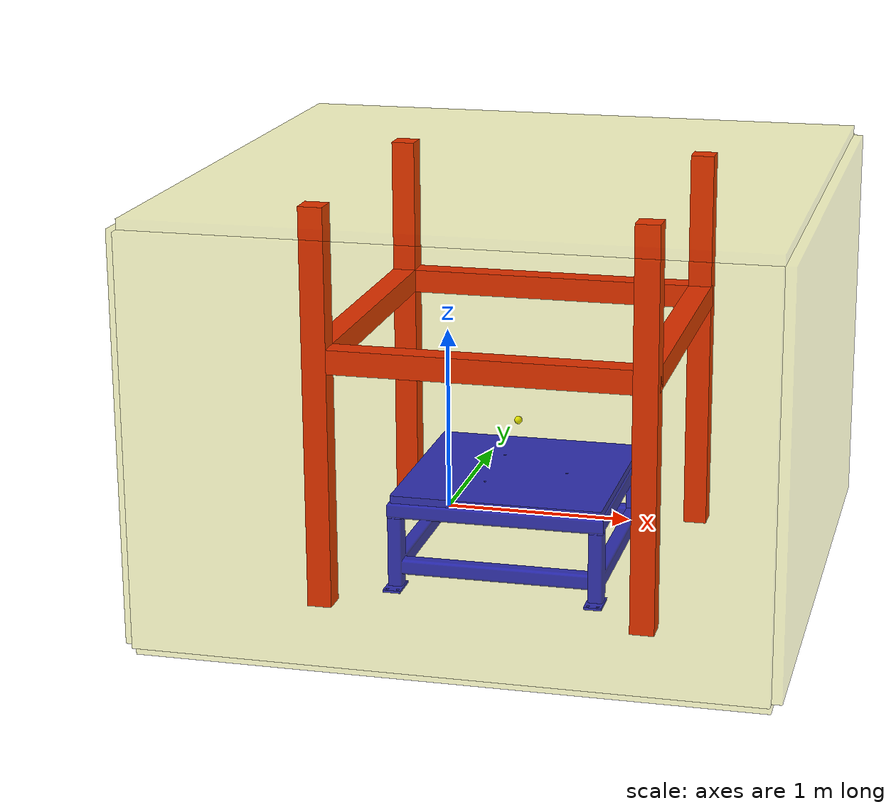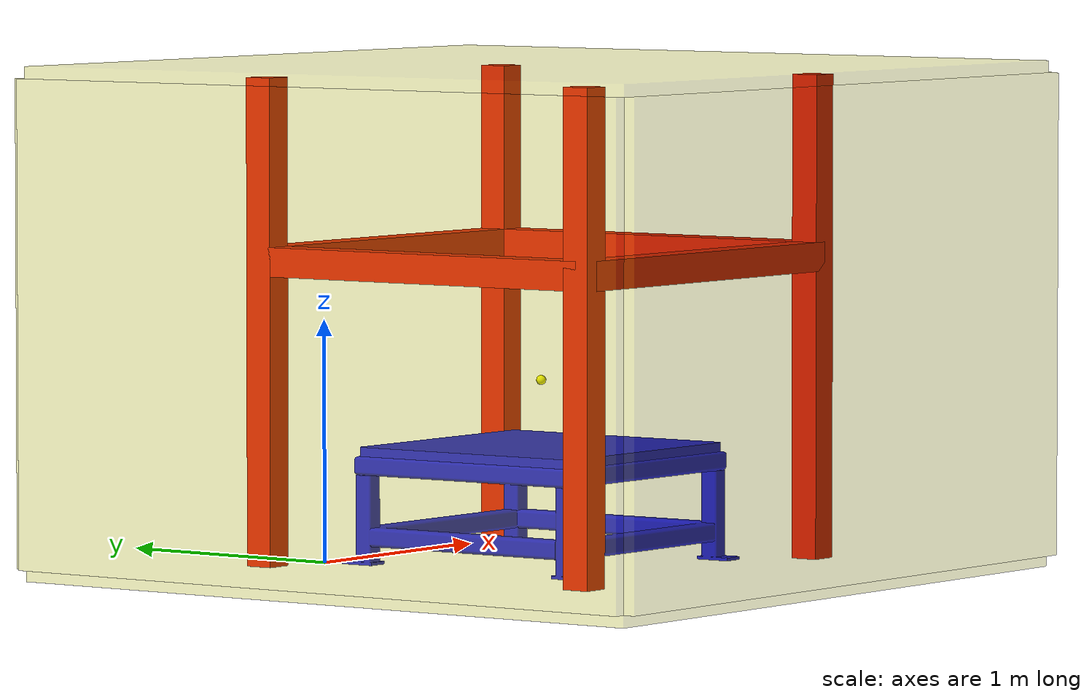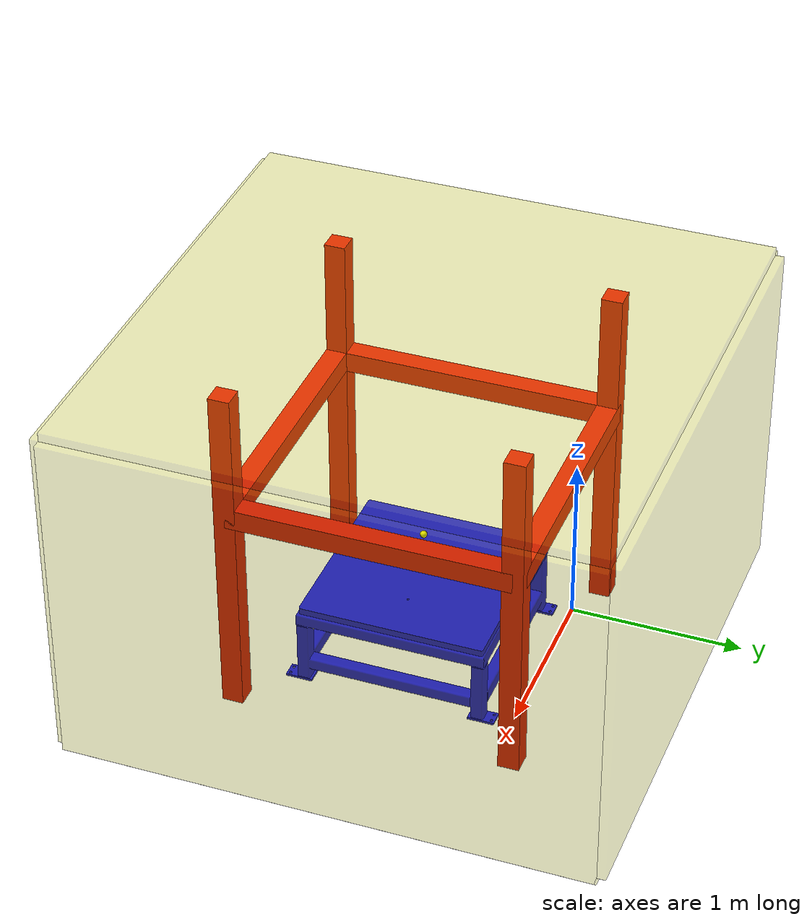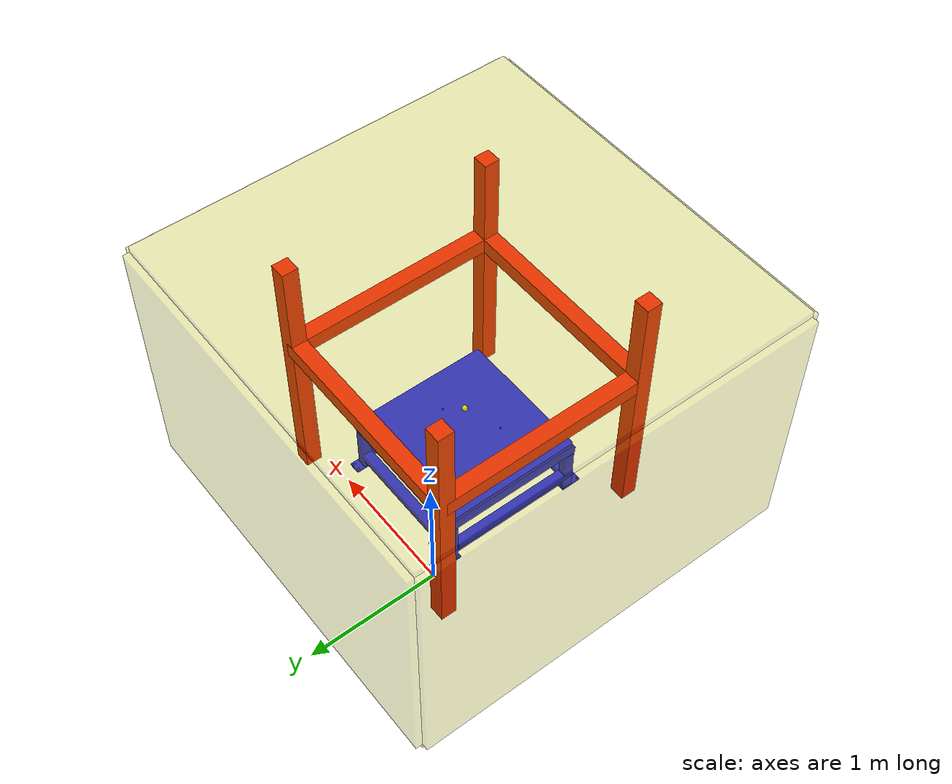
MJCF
<mujoco model="abb_irb1600_6_12">
    <compiler angle="radian" />
    <size njmax="500" nconmax="100" />
    <option collision="dynamic"/>

    <asset>
        <mesh name="pedestal" file="pedestal.stl" scale="0.001 0.001 0.001"/>
    </asset>

    <custom>
        <numeric name="env_size" size="6" data="-0.95 -2.2 0 2.05 0.8 2"/>
    </custom>

    <worldbody>
        <!-- obstacles -->
        <body name="obstacle" pos="0.55 -0.7 0" quat="0.707 0 0 -0.707">
            <include file="shield_obstacles.xml"/>
        </body>

        <!-- env limits represented as with an outer dome -->
        <body name="outer_dome" pos="0.55 -0.7 0" quat="1 0 0 0">
            <geom name="w1" size="0.05 1.5 1" pos="1.5 0.0 1" type="box" rgba="0.7 0.7 0.0 0.3" contype="3" conaffinity="3"/>
            <geom name="w2" size="1.5 0.05 1" pos="0.0 1.5 1" type="box" rgba="0.7 0.7 0.0 0.3" contype="3" conaffinity="3"/>
            <geom name="w3" size="0.05 1.5 1" pos="-1.5 0.0 1" type="box" rgba="0.7 0.7 0.0 0.3" contype="3" conaffinity="3"/>
            <geom name="w4" size="1.5 0.05 1" pos="0.0 -1.5 1" type="box" rgba="0.7 0.7 0.0 0.3" contype="3" conaffinity="3"/>
            <geom name="w5" size="1.5 1.5 0.05" pos="0 0 0" type="box" rgba="0.7 0.7 0.0 0.3" contype="3" conaffinity="3"/>
            <geom name="w6" size="1.5 1.5 0.05" pos="0 0 2" type="box" rgba="0.7 0.7 0.0 0.3" contype="3" conaffinity="3"/>
        </body>

        <body name="pedestal" pos="0.0 0.0 0.0">
            <geom type="mesh" rgba="0 0 1 1" mesh="pedestal" euler="1.57 0 0" contype="3" conaffinity="3"/>
        </body>

        <body name="b1" pos="0.55 -0.7 0.75" quat="1 0 0 0">
            <inertial pos="0 0 0" mass=".1" diaginertia="1e-4 1e-4 1e-4"/>
            <joint name="b1" type="free" limited="false" />
            <geom name="b1" type="sphere" size="0.02" rgba="1 1 0 1" contype="1" conaffinity="1"/>
        </body>

    </worldbody>

</mujoco>

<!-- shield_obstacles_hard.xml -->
<mujoco model="shield_obstacles_hard">

    <!-- hard obstacles -->
    <!-- vertical -->
    <geom name="c1" size="0.06 0.06 1" pos="0.800 0.800 1" type="box" rgba="1.0 0.0 0.0 1" contype="0" conaffinity="2"/>
    <geom name="c2" size="0.06 0.06 1" pos="-0.800 0.800 1" type="box" rgba="1.0 0.0 0.0 1" contype="0" conaffinity="2"/>
    <geom name="c3" size="0.06 0.06 1" pos="0.800 -0.800 1" type="box" rgba="1.0 0.0 0.0 1" contype="0" conaffinity="2"/>
    <geom name="c4" size="0.06 0.06 1" pos="-0.800 -0.800 1" type="box" rgba="1.0 0.0 0.0 1" contype="0" conaffinity="2"/>
    <!-- horizontal -->
    <geom name="c5" size="0.06 0.800 0.06" pos="0.800 0 1.25" type="box" rgba="1.0 0.0 0.0 1" contype="0" conaffinity="2"/>
    <geom name="c6" size="0.800 0.06 0.06" pos="0 0.800 1.25" type="box" rgba="1.0 0.0 0.0 1" contype="0" conaffinity="2"/>
    <geom name="c7" size="0.06 0.800 0.06" pos="-0.800 0 1.25" type="box" rgba="1.0 0.0 0.0 1" contype="0" conaffinity="2"/>
    <geom name="c8" size="0.800 0.06 0.06" pos="0 -0.800 1.25" type="box" rgba="1.0 0.0 0.0 1" contype="0" conaffinity="2"/>

</mujoco>

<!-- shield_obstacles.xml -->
<mujoco model="shield_obstacles_easy">

    <!-- obstacles -->
    <include file="shield_obstacles_hard.xml"/>

</mujoco>
